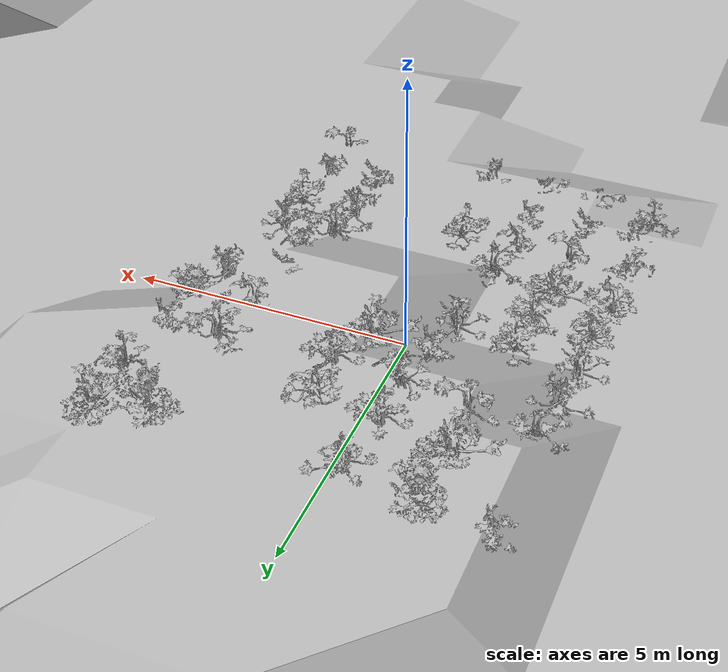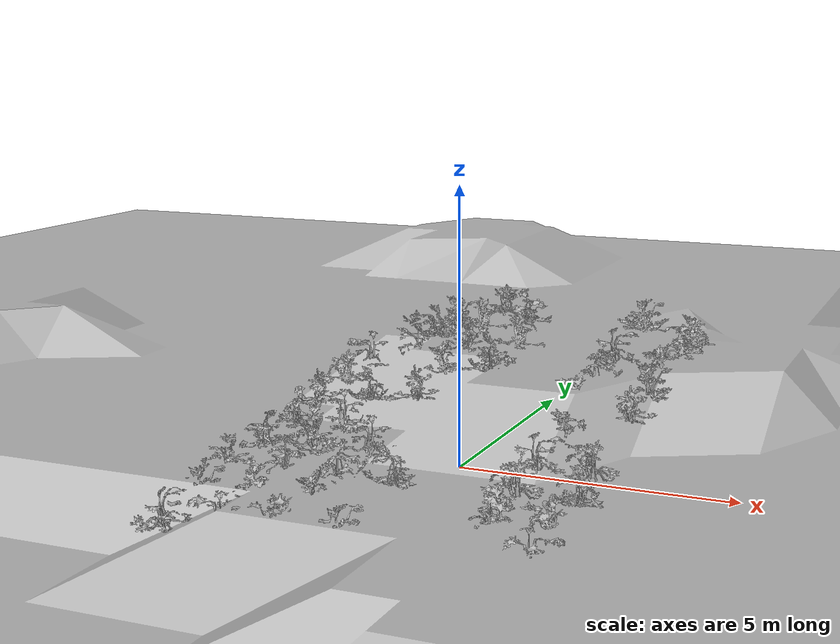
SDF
<sdf version="1.6">
 <world name="default">
  <include><uri>model://sun</uri></include>
  <include><uri>model://terrain1</uri><name>terrain1</name></include>
  <include>
   <pose>-3.0054553903732333 -4.718715383944131 0.08287359394457874 0 0 1.5792075020105578</pose>
   <uri>model://zucchini1</uri>
   <name>zucchini1</name>
  </include>
  <include>
   <pose>-2.9733193604851205 -3.69051936789329 0.21028968224111846 0 0 0.16639728857944158</pose>
   <uri>model://zucchini3</uri>
   <name>zucchini2</name>
  </include>
  <include>
   <pose>-3.0371396755559945 -2.609314747282623 0.3417802291292364 0 0 -2.4985019551563954</pose>
   <uri>model://zucchini3</uri>
   <name>zucchini3</name>
  </include>
  <include>
   <pose>-3.0715484794061823 -1.516470895141409 0.48644910161078536 0 0 1.4594304487843974</pose>
   <uri>model://zucchini5</uri>
   <name>zucchini4</name>
  </include>
  <include>
   <pose>-2.9769029164837923 -0.5104380998333055 0.6383699652142418 0 0 2.902976278188812</pose>
   <uri>model://zucchini5</uri>
   <name>zucchini5</name>
  </include>
  <include>
   <pose>-3.026571887923668 0.5554288224782096 0.7872412265921425 0 0 -1.7299895096880316</pose>
   <uri>model://zucchini2</uri>
   <name>zucchini6</name>
  </include>
  <include>
   <pose>-2.9695658782621726 1.5150873147282025 0.9445462805967032 0 0 -2.72843572131153</pose>
   <uri>model://zucchini2</uri>
   <name>zucchini7</name>
  </include>
  <include>
   <pose>-2.9348972039436676 2.5337030814547337 1.0915011209306238 0 0 -2.3458226729928606</pose>
   <uri>model://zucchini1</uri>
   <name>zucchini8</name>
  </include>
  <include>
   <pose>-3.006483828244528 4.583483466056008 1.1830611101187005 0 0 1.2820778149040146</pose>
   <uri>model://zucchini2</uri>
   <name>zucchini10</name>
  </include>
  <include>
   <pose>-1.971659771886997 -4.671377315143479 0.13946984011078536 0 0 -2.9820759482572</pose>
   <uri>model://zucchini1</uri>
   <name>zucchini11</name>
  </include>
  <include>
   <pose>-2.051641058602187 -3.6364769560277295 0.2608577982693593 0 0 1.2884565736961795</pose>
   <uri>model://zucchini3</uri>
   <name>zucchini12</name>
  </include>
  <include>
   <pose>-2.069701266723986 -2.557987782521409 0.4030375221305813 0 0 -0.6052828389406266</pose>
   <uri>model://zucchini1</uri>
   <name>zucchini13</name>
  </include>
  <include>
   <pose>-1.9977128111175702 -1.5676526093762664 0.5548368282720002 0 0 -2.838792051637186</pose>
   <uri>model://zucchini3</uri>
   <name>zucchini14</name>
  </include>
  <include>
   <pose>-1.9883534487175747 -0.530183947799477 0.7322018189263522 0 0 -2.87045101001259</pose>
   <uri>model://zucchini1</uri>
   <name>zucchini15</name>
  </include>
  <include>
   <pose>-1.9907170324819519 0.5067326992282539 0.9264736728281294 0 0 -0.22623771746171473</pose>
   <uri>model://zucchini5</uri>
   <name>zucchini16</name>
  </include>
  <include>
   <pose>-1.9804578512705324 2.586955177694444 1.3375641175382689 0 0 0.10112296355541384</pose>
   <uri>model://zucchini1</uri>
   <name>zucchini18</name>
  </include>
  <include>
   <pose>-1.9806143454005167 3.5934182672075377 1.4963133104411985 0 0 -2.3618405183746134</pose>
   <uri>model://zucchini3</uri>
   <name>zucchini19</name>
  </include>
  <include>
   <pose>-1.9916605267256642 4.643069176745795 1.5364717111063104 0 0 -0.7782252110578334</pose>
   <uri>model://zucchini3</uri>
   <name>zucchini20</name>
  </include>
  <include>
   <pose>-0.991367377670096 -4.688670537741578 0.18349833984559047 0 0 2.7337940709010455</pose>
   <uri>model://zucchini3</uri>
   <name>zucchini21</name>
  </include>
  <include>
   <pose>-0.9684163296655767 -3.5901247063867308 0.3175626353324745 0 0 1.7170416195892244</pose>
   <uri>model://zucchini2</uri>
   <name>zucchini22</name>
  </include>
  <include>
   <pose>-1.0672230912623988 -2.6025623458164406 0.4506182236137725 0 0 2.5111744986929345</pose>
   <uri>model://zucchini5</uri>
   <name>zucchini23</name>
  </include>
  <include>
   <pose>-0.9593876692625403 -1.541883573109154 0.6317298954936059 0 0 -2.3438079049378935</pose>
   <uri>model://zucchini1</uri>
   <name>zucchini24</name>
  </include>
  <include>
   <pose>-1.0101007454111743 0.503981925720381 1.056092610737758 0 0 -1.8457540558085253</pose>
   <uri>model://zucchini2</uri>
   <name>zucchini26</name>
  </include>
  <include>
   <pose>-0.9987424289365072 1.5764131290212289 1.323418487154491 0 0 1.794612062518648</pose>
   <uri>model://zucchini2</uri>
   <name>zucchini27</name>
  </include>
  <include>
   <pose>-0.9456978509051549 2.6098478377611904 1.585159507271175 0 0 -0.5576869353713301</pose>
   <uri>model://zucchini2</uri>
   <name>zucchini28</name>
  </include>
  <include>
   <pose>-1.0553112648817589 3.638931207452447 1.7745726498159882 0 0 0.26636631050951465</pose>
   <uri>model://zucchini2</uri>
   <name>zucchini29</name>
  </include>
  <include>
   <pose>-0.9990421362995549 4.728692024552073 1.8592815354784042 0 0 0.9079536823793326</pose>
   <uri>model://zucchini2</uri>
   <name>zucchini30</name>
  </include>
  <include>
   <pose>-0.018519667034447896 -4.629313425189124 0.23029266133935838 0 0 0.26703372856240337</pose>
   <uri>model://zucchini3</uri>
   <name>zucchini31</name>
  </include>
  <include>
   <pose>-0.03928077859532023 -2.6096114479297445 0.49495369353986096 0 0 -0.6685826620806385</pose>
   <uri>model://zucchini5</uri>
   <name>zucchini33</name>
  </include>
  <include>
   <pose>-0.008010445692118395 1.588137745220501 1.431558764860451 0 0 -2.1679025918966093</pose>
   <uri>model://zucchini3</uri>
   <name>zucchini37</name>
  </include>
  <include>
   <pose>0.0937143976132985 2.610819665144857 1.7093551939797522 0 0 0.3344151325875826</pose>
   <uri>model://zucchini2</uri>
   <name>zucchini38</name>
  </include>
  <include>
   <pose>-0.025363199270262028 3.6053467986973473 1.92995469692882 0 0 -1.9403896027286447</pose>
   <uri>model://zucchini5</uri>
   <name>zucchini39</name>
  </include>
  <include>
   <pose>2.0104437084689684 -3.563843198656041 0.39907863888453465 0 0 1.5037822298392296</pose>
   <uri>model://zucchini3</uri>
   <name>zucchini42</name>
  </include>
  <include>
   <pose>2.013915542742531 -2.5088146574278425 0.541437641731753 0 0 2.9483725483672174</pose>
   <uri>model://zucchini2</uri>
   <name>zucchini43</name>
  </include>
  <include>
   <pose>1.9741191403381357 -1.621089899215218 0.6867398000909186 0 0 0.7809789030591392</pose>
   <uri>model://zucchini1</uri>
   <name>zucchini44</name>
  </include>
  <include>
   <pose>2.058722885460046 -0.5898776098031787 0.8806847768983479 0 0 -0.24408516056660812</pose>
   <uri>model://zucchini2</uri>
   <name>zucchini45</name>
  </include>
  <include>
   <pose>1.914512290057323 0.4621376983880736 1.1157850199346344 0 0 1.830556690465163</pose>
   <uri>model://zucchini3</uri>
   <name>zucchini46</name>
  </include>
  <include>
   <pose>1.9768597471925164 1.5007106027785837 1.3473137635326213 0 0 2.2351480402018975</pose>
   <uri>model://zucchini5</uri>
   <name>zucchini47</name>
  </include>
  <include>
   <pose>2.0008027587097383 2.556620597815497 1.5649808559601737 0 0 0.8379926323289069</pose>
   <uri>model://zucchini1</uri>
   <name>zucchini48</name>
  </include>
  <include>
   <pose>2.0134223360349845 4.5800628632432945 1.776817251508337 0 0 -0.019971747312305332</pose>
   <uri>model://zucchini3</uri>
   <name>zucchini50</name>
  </include>
  <include>
   <pose>2.9954077140927526 -4.679081949513459 0.2903016828247381 0 0 -0.012909127059430148</pose>
   <uri>model://zucchini1</uri>
   <name>zucchini51</name>
  </include>
  <include>
   <pose>2.9640850837450703 -3.5783383917888765 0.3961783023499697 0 0 -2.62962232187941</pose>
   <uri>model://zucchini2</uri>
   <name>zucchini52</name>
  </include>
  <include>
   <pose>3.025077667650578 -2.5100292021120905 0.5239331112781664 0 0 -0.21630665898912493</pose>
   <uri>model://zucchini5</uri>
   <name>zucchini53</name>
  </include>
  <include>
   <pose>2.938175516281571 -1.5574719731307665 0.665567834547799 0 0 2.7506665589310693</pose>
   <uri>model://zucchini2</uri>
   <name>zucchini54</name>
  </include>
  <include>
   <pose>2.970850466868649 0.575307380336702 1.043309980903176 0 0 -2.3525156432553516</pose>
   <uri>model://zucchini2</uri>
   <name>zucchini56</name>
  </include>
  <include>
   <pose>2.945789728493906 1.6083503889630981 1.2383120710624447 0 0 -0.5823448211126658</pose>
   <uri>model://zucchini3</uri>
   <name>zucchini57</name>
  </include>
  <include>
   <pose>2.9415501357303286 2.53191220061378 1.3906707471573214 0 0 1.9819263610756632</pose>
   <uri>model://zucchini2</uri>
   <name>zucchini58</name>
  </include>
  <include>
   <pose>3.0179347377647243 3.627934912957945 1.4922193134864086 0 0 1.6745324218057585</pose>
   <uri>model://zucchini1</uri>
   <name>zucchini59</name>
  </include>
  <include>
   <pose>3.0115481304083915 4.62731816925014 1.5088731491305338 0 0 -1.4226880320163486</pose>
   <uri>model://zucchini3</uri>
   <name>zucchini60</name>
  </include>
 </world>
</sdf>

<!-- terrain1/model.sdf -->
<sdf version="1.6">
  <model name="terrain1">
    <link name='link'>
      <pose>0 0 0 0 0 0</pose>
      <gravity>1</gravity>
      <self_collide>0</self_collide>
      <kinematic>0</kinematic>
      <enable_wind>0</enable_wind>
      <visual name='visual'>
        <pose>0 0 0 0 0 0</pose>
        <geometry>
          <mesh>
            <uri>model://terrain1/meshes/terrain1.obj</uri>
          </mesh>
        </geometry>
        <transparency>0</transparency>
        <cast_shadows>1</cast_shadows>
      </visual>
      <collision name='collision'>
        <laser_retro>0</laser_retro>
        <max_contacts>10</max_contacts>
        <pose>0 0 0 0 0 0</pose>
        <geometry>
          <mesh>
            <uri>model://terrain1/meshes/terrain1.obj</uri>
            <scale>1 1 1</scale>
          </mesh>
        </geometry>
      </collision>
    </link>
    <static>1</static>
    <allow_auto_disable>1</allow_auto_disable>
  </model>
</sdf>

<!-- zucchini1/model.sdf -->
<sdf version='1.7'>
  <model name="zucchini1">
    <link name='link'>
      <pose>0 0 0 0 0 0</pose>
      <gravity>1</gravity>
      <self_collide>0</self_collide>
      <kinematic>0</kinematic>
      <enable_wind>0</enable_wind>
      <visual name='visual'>
        <pose>0 0 0 0 0 0</pose>
        <geometry>
          <mesh>
            <uri>model://zucchini1/meshes/zucchina1.obj</uri>
          </mesh>
        </geometry>
        <transparency>0</transparency>
        <cast_shadows>1</cast_shadows>
      </visual>
      <collision name='collision'>
        <laser_retro>0</laser_retro>
        <max_contacts>10</max_contacts>
        <pose>0 0 0 0 0 0</pose>
        <geometry>
          <mesh>
            <uri>model://zucchini1/meshes/zucchina1.obj</uri>
            <scale>1 1 1</scale>
          </mesh>
        </geometry>
      </collision>
    </link>
    <static>1</static>
    <allow_auto_disable>1</allow_auto_disable>
  </model>
</sdf>

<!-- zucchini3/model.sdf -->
<sdf version='1.7'>
  <model name="zucchini3">
    <link name='link'>
      <pose>0 0 0 0 0 0</pose>
      <gravity>1</gravity>
      <self_collide>0</self_collide>
      <kinematic>0</kinematic>
      <enable_wind>0</enable_wind>
      <visual name='visual'>
        <pose>0 0 0 0 0 0</pose>
        <geometry>
          <mesh>
            <uri>model://zucchini3/meshes/zucchina3.obj</uri>
          </mesh>
        </geometry>
        <transparency>0</transparency>
        <cast_shadows>1</cast_shadows>
      </visual>
      <collision name='collision'>
        <laser_retro>0</laser_retro>
        <max_contacts>10</max_contacts>
        <pose>0 0 0 0 0 0</pose>
        <geometry>
          <mesh>
            <uri>model://zucchini3/meshes/zucchina3.obj</uri>
            <scale>1 1 1</scale>
          </mesh>
        </geometry>
      </collision>
    </link>
    <static>1</static>
    <allow_auto_disable>1</allow_auto_disable>
  </model>
</sdf>

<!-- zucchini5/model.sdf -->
<sdf version='1.7'>
  <model name="zucchini5">
    <link name='link'>
      <pose>0 0 0 0 0 0</pose>
      <gravity>1</gravity>
      <self_collide>0</self_collide>
      <kinematic>0</kinematic>
      <enable_wind>0</enable_wind>
      <visual name='visual'>
        <pose>0 0 0 0 0 0</pose>
        <geometry>
          <mesh>
            <uri>model://zucchini5/meshes/zucchina5.obj</uri>
          </mesh>
        </geometry>
        <transparency>0</transparency>
        <cast_shadows>1</cast_shadows>
      </visual>
      <collision name='collision'>
        <laser_retro>0</laser_retro>
        <max_contacts>10</max_contacts>
        <pose>0 0 0 0 0 0</pose>
        <geometry>
          <mesh>
            <uri>model://zucchini5/meshes/zucchina5.obj</uri>
            <scale>1 1 1</scale>
          </mesh>
        </geometry>
      </collision>
    </link>
    <static>1</static>
    <allow_auto_disable>1</allow_auto_disable>
  </model>
</sdf>

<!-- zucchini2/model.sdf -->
<sdf version='1.7'>
  <model name="zucchini2">
    <link name='link'>
      <pose>0 0 0 0 0 0</pose>
      <gravity>1</gravity>
      <self_collide>0</self_collide>
      <kinematic>0</kinematic>
      <enable_wind>0</enable_wind>
      <visual name='visual'>
        <pose>0 0 0 0 0 0</pose>
        <geometry>
          <mesh>
            <uri>model://zucchini2/meshes/zucchina2.obj</uri>
          </mesh>
        </geometry>
        <transparency>0</transparency>
        <cast_shadows>1</cast_shadows>
      </visual>
      <collision name='collision'>
        <laser_retro>0</laser_retro>
        <max_contacts>10</max_contacts>
        <pose>0 0 0 0 0 0</pose>
        <geometry>
          <mesh>
            <uri>model://zucchini2/meshes/zucchina2.obj</uri>
            <scale>1 1 1</scale>
          </mesh>
        </geometry>
      </collision>
    </link>
    <static>1</static>
    <allow_auto_disable>1</allow_auto_disable>
  </model>
</sdf>
